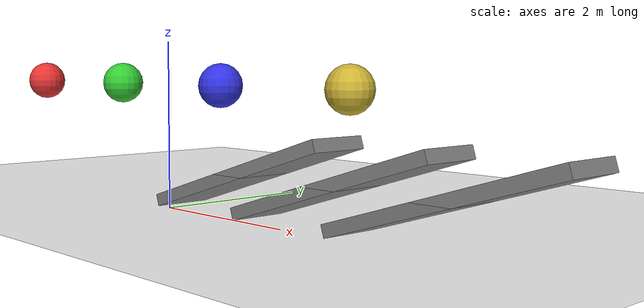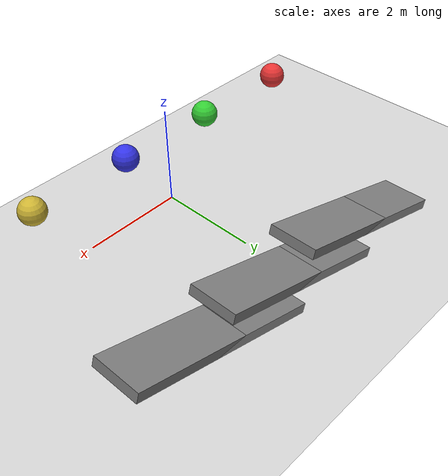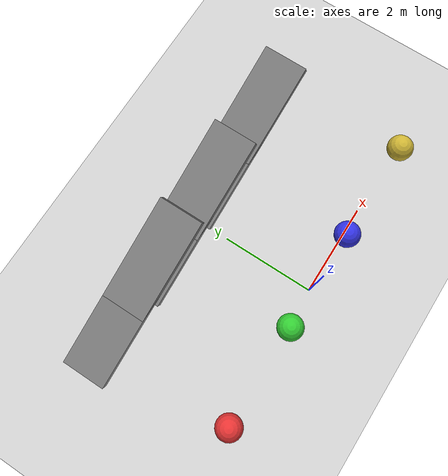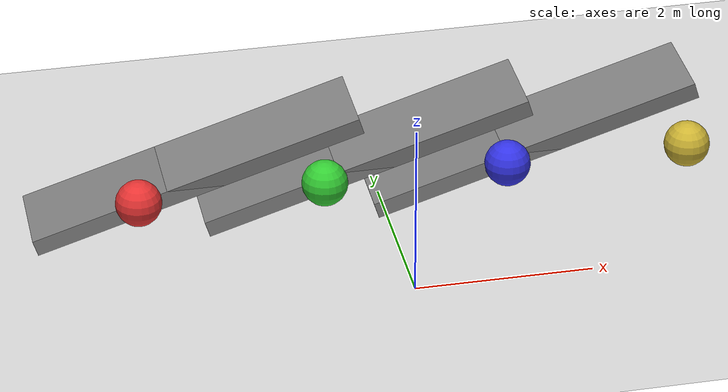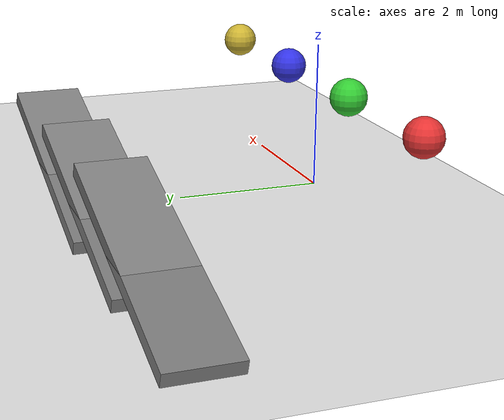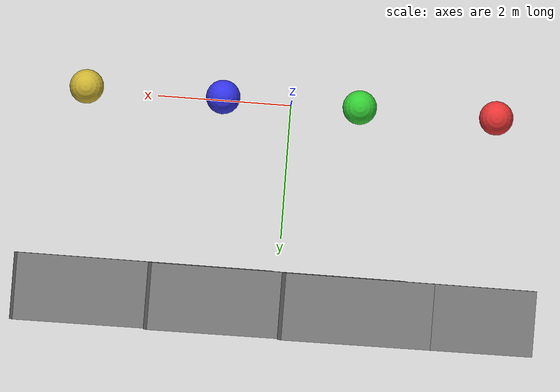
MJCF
<!-- condim碰撞维度对比: 1=无摩擦 3=平移摩擦 4=+旋转摩擦 6=全摩擦 -->
<mujoco model="condim_test">
    <compiler angle="radian"/>
    <option timestep="0.002" gravity="0 0 -9.81"/>

    <visual>
        <global realtime="1"/>
        <quality shadowsize="1024"/>
        <headlight diffuse="1 1 1" specular="0.5 0.5 0.5" active="1"/>
    </visual>

    <asset>
        <texture name="grid" type="2d" builtin="checker" width="512" height="512"
                 rgb1=".2 .2 .2" rgb2=".8 .8 .8"/>
        <material name="grid" texture="grid"/>
    </asset>

    <worldbody>
        <geom name="floor" type="plane" size="20 20 .01" material="grid" condim="3"/>

        <!-- condim=1: 无摩擦 —— 球会一直滑，不会滚 -->
        <body pos="-3 0 1.5">
            <freejoint/>
            <geom type="sphere" size="0.25" rgba=".9 .2 .2 1" condim="1"/>
        </body>

        <!-- condim=3: 有平移摩擦 —— 球碰到地面会开始滚动 -->
        <body pos="-1 0 1.5">
            <freejoint/>
            <geom type="sphere" size="0.25" rgba=".2 .8 .2 1" condim="3"/>
        </body>

        <!-- condim=4: +绕法线旋转摩擦 —— 绕接触点旋转有阻力 -->
        <body pos="1 0 1.5">
            <freejoint/>
            <geom type="sphere" size="0.25" rgba=".2 .2 .9 1" condim="4"/>
        </body>

        <!-- condim=6: 全摩擦 —— 防止无限滚动 -->
        <body pos="3 0 1.5">
            <freejoint/>
            <geom type="sphere" size="0.25" rgba=".8 .7 .2 1" condim="6"/>
        </body>

        <!-- 斜面用于测试滚动行为 -->
        <body pos="-2 3 0" euler="0 -.3 0">
            <geom type="box" size="2 .5 .1" rgba=".5 .5 .5 1" condim="3"/>
        </body>
        <body pos="0 3 0" euler="0 -.3 0">
            <geom type="box" size="2 .5 .1" rgba=".5 .5 .5 1" condim="3"/>
        </body>
        <body pos="2 3 0" euler="0 -.3 0">
            <geom type="box" size="2 .5 .1" rgba=".5 .5 .5 1" condim="3"/>
        </body>
    </worldbody>
</mujoco>
